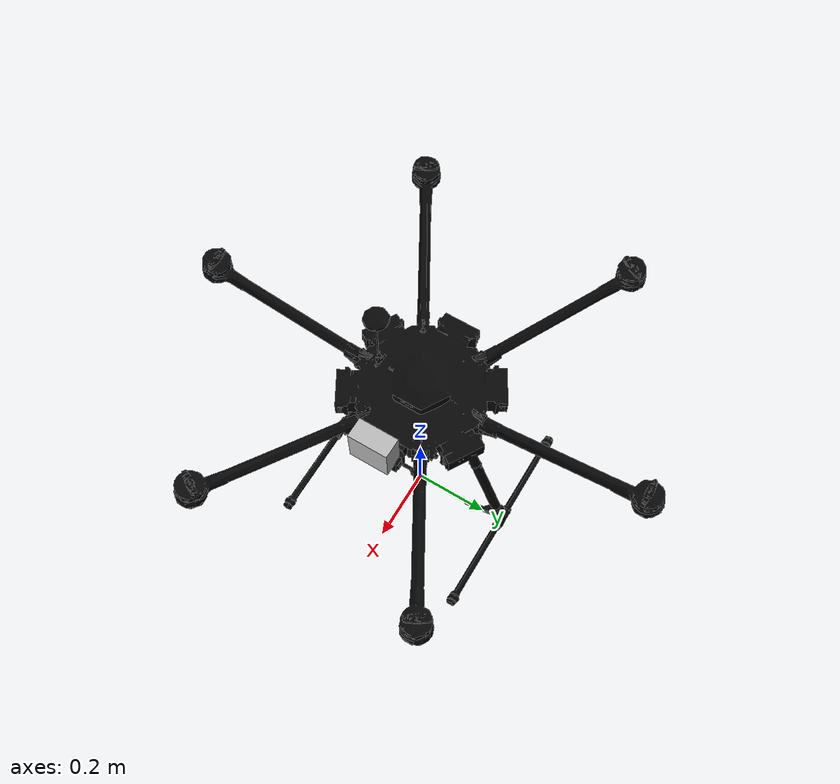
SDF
<?xml version='1.0'?>
<sdf version='1.4'>
    <model name='prognodrone'>
        <!-- model plugins should be put in the front of the sensor plugins! -->
        <plugin name='simple_drone' filename='libplugin_drone.so'>
            <bodyName>base_link</bodyName>
            <imuTopic>/dji_sdk/imu</imuTopic>
            <rollpitchProportionalGain>10.0</rollpitchProportionalGain>
            <rollpitchDifferentialGain>5.0</rollpitchDifferentialGain>
            <rollpitchLimit>0.43</rollpitchLimit> <!--        M600Pro-->
            <yawProportionalGain>2.0</yawProportionalGain>
            <yawDifferentialGain>1.0</yawDifferentialGain>
            <yawLimit>2.6</yawLimit> <!--        M600Pro-->
            <velocityXYProportionalGain>5.0</velocityXYProportionalGain>
            <velocityXYDifferentialGain>2.3</velocityXYDifferentialGain>

            <velocityXYLimit>18</velocityXYLimit> <!--        M600Pro-->
            <velocityZProportionalGain>5.0</velocityZProportionalGain>
            <velocityZDifferentialGain>1.0</velocityZDifferentialGain>
            <velocityZLimit>5</velocityZLimit> <!--        M600Pro-->
            <positionXYProportionalGain>1.1</positionXYProportionalGain>
            <positionXYDifferentialGain>0.0</positionXYDifferentialGain>
            <positionXYIntegralGain>0.0</positionXYIntegralGain>
            <positionXYLimit>5</positionXYLimit>
            <positionZProportionalGain>1.0</positionZProportionalGain>
            <positionZDifferentialGain>0.2</positionZDifferentialGain>
            <positionZLimit>-1</positionZLimit>
            <maxForce>60</maxForce>
            <motionSmallNoise>0.05</motionSmallNoise>
            <motionDriftNoise>0.03</motionDriftNoise>
            <motionDriftNoiseTime>5.0</motionDriftNoiseTime>
        </plugin>
        <plugin name="gps_sim"  filename="libhector_gazebo_ros_gps.so" >
            <updateRate>4.0</updateRate>
            <bodyName>base_link</bodyName>
            <frameId>base_link</frameId>
            <topicName>/dji_sdk/gps_position</topicName>
            <velocityTopicName>/dji_sdk/velocity</velocityTopicName>
            <referenceLatitude>49.0128444</referenceLatitude>
            <referenceLongitude>8.407089</referenceLongitude>
            <drift>5.0 5.0 5.0</drift>
            <gaussianNoise>0.01 0.01 0.01</gaussianNoise>
            <velocityDrift>0 0 0</velocityDrift>
            <velocityGaussianNoise>0.05 0.05 0.05</velocityGaussianNoise>
        </plugin>

        <!-- pose of the quadrotor in the world frame -->
        <pose>0 0 0.00 0 0 0</pose>
        <link name='base_link'>
            <inertial>
                <mass>1.477</mass>
                <pose>0 0 0 0 0 0</pose>
                <inertia>         <!-- rotational inertia -->
                    <ixx>0.1152</ixx>
                    <ixy>0</ixy>
                    <ixz>0</ixz>
                    <iyy>0.1152</iyy>
                    <iyz>0</iyz>
                    <izz>0.218</izz>
                </inertia>
            </inertial>

            <visual name='visual'>
                <geometry>
                    <mesh><uri>model://prognodrone/m600.dae</uri></mesh>

                </geometry>
            </visual>

            <visual name='front_camera'>
                <pose> 0.2 0.0 0.6 0 0 0 </pose>
                <geometry>
                    <box>
                        <size>0.05 0.1 0.1</size>
                    </box>
                </geometry>
            </visual>

            <visual name='bottom_camera'>
                <pose> 0.0 0.0 0.4 0 0.5 0 </pose>
                <geometry>
                    <box>
                        <size>0.05 0.1 0.1</size>
                    </box>
                </geometry>
            </visual>

            <collision name='collision'>
                <geometry>
                    <mesh><uri>model://prognodrone/m600.dae</uri></mesh>
                </geometry>
            </collision>

            <gravity>1</gravity>

            <!-- IMU sensor in 100fps -->
            <sensor name='sensor_imu' type='imu'>
                <always_on> 1 </always_on>
                <update_rate> 100 </update_rate>
                <pose> 0 0 0 0 0 0 </pose>
                <plugin name='ros_imu' filename='libplugin_ros_imu.so'>
                </plugin>
                <imu>
                    <noise>
                        <type>gaussian</type>
                        <rate>
                            <mean> 0 </mean>
                            <stddev> 0 </stddev>
                        </rate>
                        <accel>
                            <mean> 0 </mean>
                            <stddev> 0.00 </stddev>
                        </accel>
                    </noise>
                </imu>
            </sensor>

            <!-- Front Depth and Color Cam -->
            <sensor name="camera" type="depth">
                <update_rate>20</update_rate>
                <camera>
                    <horizontal_fov>1.047198</horizontal_fov>
                    <image>
                        <width>640</width>
                        <height>480</height>
                        <format>R8G8B8</format>
                    </image>
                    <clip>
                        <near>0.05</near>
                        <far>5000</far>
                    </clip>
                </camera>
                <pose> 0.2 0.0 0.6 0 0 0 </pose>
                <plugin name="camera_plugin" filename="libgazebo_ros_openni_kinect.so">
                    <baseline>0.2</baseline>
                    <alwaysOn>true</alwaysOn>
                    <updateRate>0.0</updateRate>
                    <cameraName>front_camera</cameraName>
                    <imageTopicName>/drone/front_camera/color/image_raw</imageTopicName>
                    <depthImageTopicName>/drone/front_camera/depth/image_raw</depthImageTopicName>
                    <pointCloudTopicName>/drone/front_camera/depth/points</pointCloudTopicName>
                    <frameName>drone</frameName>
                    <pointCloudCutoff>0.5</pointCloudCutoff>
                    <pointCloudCutoffMax>100</pointCloudCutoffMax>
                    <distortionK1>0</distortionK1>
                    <distortionK2>0</distortionK2>
                    <distortionK3>0</distortionK3>
                    <distortionT1>0</distortionT1>
                    <distortionT2>0</distortionT2>
                    <CxPrime>0</CxPrime>
                    <Cx>0</Cx>
                    <Cy>0</Cy>
                    <focalLength>0</focalLength>
                    <hackBaseline>0</hackBaseline>
                </plugin>
            </sensor>

            <!-- Bottom Depth and Color Cam -->

            <sensor name="camera" type="depth">
                <update_rate>15</update_rate>
                <camera>
                    <horizontal_fov>2.047198</horizontal_fov>
                    <image>
                        <width>640</width>
                        <height>480</height>
                        <format>R8G8B8</format>
                    </image>
                    <clip>
                        <near>0.05</near>
                        <far>5000</far>
                    </clip>
                </camera>
                <pose> 0.0 0.0 0.4 0 0.5 0 </pose>
                <plugin name="camera_plugin" filename="libgazebo_ros_openni_kinect.so">
                    <baseline>0.2</baseline>
                    <alwaysOn>true</alwaysOn>
                    <updateRate>0.0</updateRate>
                    <cameraName>bottom_camera</cameraName>
                    <imageTopicName>/drone/bottom_camera/color/image_raw</imageTopicName>
                    <depthImageTopicName>/drone/bottom_camera/depth/image_raw</depthImageTopicName>
                    <pointCloudTopicName>/drone/bottom_camera/depth/points</pointCloudTopicName>
                    <frameName>drone</frameName>
                    <pointCloudCutoff>0.5</pointCloudCutoff>
                    <pointCloudCutoffMax>100</pointCloudCutoffMax>
                    <distortionK1>0</distortionK1>
                    <distortionK2>0</distortionK2>
                    <distortionK3>0</distortionK3>
                    <distortionT1>0</distortionT1>
                    <distortionT2>0</distortionT2>
                    <CxPrime>0</CxPrime>
                    <Cx>0</Cx>
                    <Cy>0</Cy>
                    <focalLength>0</focalLength>
                    <hackBaseline>0</hackBaseline>
                </plugin>
            </sensor>

        </link>
    </model>
</sdf>
